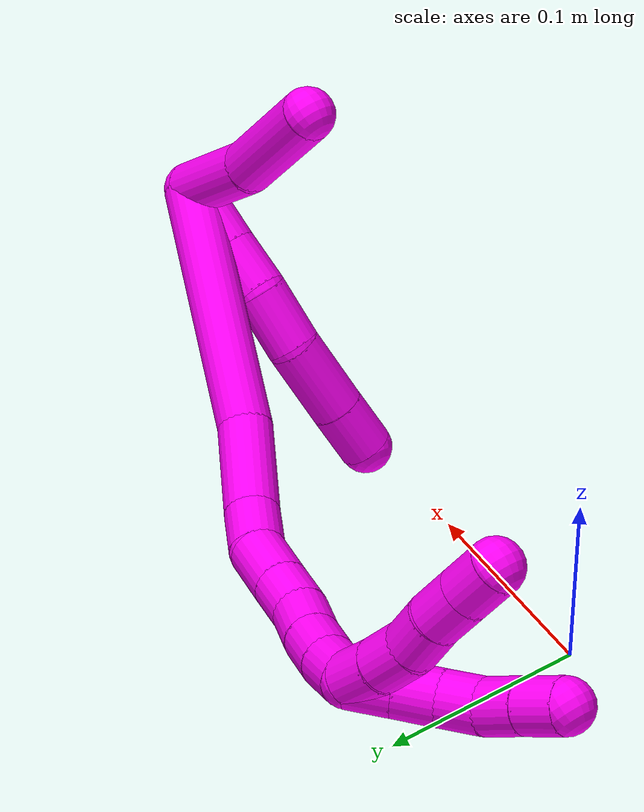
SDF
<sdf version="1.7">
 <world name="default">
  <model name="10">
   <static>0</static>
   <link name="10">
    <collision name="collision-cylinder-e_1_2_8">
     <pose>0.000434 -0.000926 -0.016501 3.08554 0.026283 0.876753</pose>
     <geometry><cylinder><radius>0.0125</radius><length>0.033065</length></cylinder></geometry>
     <surface>
      <friction><ode><mu>1.16</mu><mu2>1.16</mu2><slip1>0</slip1><slip2>0</slip2></ode></friction>
      <contact><ode><kp>1e+06</kp><kd>1</kd><max_vel>0</max_vel><min_depth>0.001</min_depth></ode></contact>
     </surface>
    </collision>
    <visual name="visual-cylinder-e_1_2_8">
     <pose>0.000434 -0.000926 -0.016501 3.08554 0.026283 0.876753</pose>
     <geometry><cylinder><radius>0.0125</radius><length>0.033065</length></cylinder></geometry>
     <material><ambient>1 0 0.964706 1</ambient></material>
    </visual>
    <collision name="collision-cylinder-e_2_8_9">
     <pose>0.001025 -0.002891 -0.045278 3.05716 0.012671 0.297748</pose>
     <geometry><cylinder><radius>0.0125</radius><length>0.024642</length></cylinder></geometry>
     <surface>
      <friction><ode><mu>1.16</mu><mu2>1.16</mu2><slip1>0</slip1><slip2>0</slip2></ode></friction>
      <contact><ode><kp>1e+06</kp><kd>1</kd><max_vel>0</max_vel><min_depth>0.001</min_depth></ode></contact>
     </surface>
    </collision>
    <visual name="visual-cylinder-e_2_8_9">
     <pose>0.001025 -0.002891 -0.045278 3.05716 0.012671 0.297748</pose>
     <geometry><cylinder><radius>0.0125</radius><length>0.024642</length></cylinder></geometry>
     <material><ambient>1 0 0.964706 1</ambient></material>
    </visual>
    <collision name="collision-cylinder-e_3_9_10">
     <pose>0.005145 -0.00748 -0.071388 2.89042 0.270737 1.64659</pose>
     <geometry><cylinder><radius>0.0125</radius><length>0.029644</length></cylinder></geometry>
     <surface>
      <friction><ode><mu>1.16</mu><mu2>1.16</mu2><slip1>0</slip1><slip2>0</slip2></ode></friction>
      <contact><ode><kp>1e+06</kp><kd>1</kd><max_vel>0</max_vel><min_depth>0.001</min_depth></ode></contact>
     </surface>
    </collision>
    <visual name="visual-cylinder-e_3_9_10">
     <pose>0.005145 -0.00748 -0.071388 2.89042 0.270737 1.64659</pose>
     <geometry><cylinder><radius>0.0125</radius><length>0.029644</length></cylinder></geometry>
     <material><ambient>1 0 0.964706 1</ambient></material>
    </visual>
    <collision name="collision-cylinder-e_4_10_11">
     <pose>0.016419 -0.019065 -0.100458 2.65626 0.401351 1.3757</pose>
     <geometry><cylinder><radius>0.0125</radius><length>0.037423</length></cylinder></geometry>
     <surface>
      <friction><ode><mu>1.16</mu><mu2>1.16</mu2><slip1>0</slip1><slip2>0</slip2></ode></friction>
      <contact><ode><kp>1e+06</kp><kd>1</kd><max_vel>0</max_vel><min_depth>0.001</min_depth></ode></contact>
     </surface>
    </collision>
    <visual name="visual-cylinder-e_4_10_11">
     <pose>0.016419 -0.019065 -0.100458 2.65626 0.401351 1.3757</pose>
     <geometry><cylinder><radius>0.0125</radius><length>0.037423</length></cylinder></geometry>
     <material><ambient>1 0 0.964706 1</ambient></material>
    </visual>
    <collision name="collision-cylinder-e_5_11_6">
     <pose>0.028738 -0.032819 -0.125757 2.62483 0.408411 1.3293</pose>
     <geometry><cylinder><radius>0.0125</radius><length>0.025225</length></cylinder></geometry>
     <surface>
      <friction><ode><mu>1.16</mu><mu2>1.16</mu2><slip1>0</slip1><slip2>0</slip2></ode></friction>
      <contact><ode><kp>1e+06</kp><kd>1</kd><max_vel>0</max_vel><min_depth>0.001</min_depth></ode></contact>
     </surface>
    </collision>
    <visual name="visual-cylinder-e_5_11_6">
     <pose>0.028738 -0.032819 -0.125757 2.62483 0.408411 1.3293</pose>
     <geometry><cylinder><radius>0.0125</radius><length>0.025225</length></cylinder></geometry>
     <material><ambient>1 0 0.964706 1</ambient></material>
    </visual>
    <collision name="collision-cylinder-e_1_2_12">
     <pose>-0.021162 0.000658 -0.007239 -3.05099 -1.23994 3.01476</pose>
     <geometry><cylinder><radius>0.0125</radius><length>0.044752</length></cylinder></geometry>
     <surface>
      <friction><ode><mu>1.16</mu><mu2>1.16</mu2><slip1>0</slip1><slip2>0</slip2></ode></friction>
      <contact><ode><kp>1e+06</kp><kd>1</kd><max_vel>0</max_vel><min_depth>0.001</min_depth></ode></contact>
     </surface>
    </collision>
    <visual name="visual-cylinder-e_1_2_12">
     <pose>-0.021162 0.000658 -0.007239 -3.05099 -1.23994 3.01476</pose>
     <geometry><cylinder><radius>0.0125</radius><length>0.044752</length></cylinder></geometry>
     <material><ambient>1 0 0.964706 1</ambient></material>
    </visual>
    <collision name="collision-cylinder-e_2_12_5">
     <pose>-0.069708 0.003203 -0.017592 -2.59668 -1.43861 2.52398</pose>
     <geometry><cylinder><radius>0.0125</radius><length>0.055248</length></cylinder></geometry>
     <surface>
      <friction><ode><mu>1.16</mu><mu2>1.16</mu2><slip1>0</slip1><slip2>0</slip2></ode></friction>
      <contact><ode><kp>1e+06</kp><kd>1</kd><max_vel>0</max_vel><min_depth>0.001</min_depth></ode></contact>
     </surface>
    </collision>
    <visual name="visual-cylinder-e_2_12_5">
     <pose>-0.069708 0.003203 -0.017592 -2.59668 -1.43861 2.52398</pose>
     <geometry><cylinder><radius>0.0125</radius><length>0.055248</length></cylinder></geometry>
     <material><ambient>1 0 0.964706 1</ambient></material>
    </visual>
    <collision name="collision-cylinder-e_1_2_13">
     <pose>0.001627 0.022237 -0.057525 -2.77272 0.026375 -0.141151</pose>
     <geometry><cylinder><radius>0.0125</radius><length>0.12339</length></cylinder></geometry>
     <surface>
      <friction><ode><mu>1.16</mu><mu2>1.16</mu2><slip1>0</slip1><slip2>0</slip2></ode></friction>
      <contact><ode><kp>1e+06</kp><kd>1</kd><max_vel>0</max_vel><min_depth>0.001</min_depth></ode></contact>
     </surface>
    </collision>
    <visual name="visual-cylinder-e_1_2_13">
     <pose>0.001627 0.022237 -0.057525 -2.77272 0.026375 -0.141151</pose>
     <geometry><cylinder><radius>0.0125</radius><length>0.12339</length></cylinder></geometry>
     <material><ambient>1 0 0.964706 1</ambient></material>
    </visual>
    <collision name="collision-cylinder-e_2_13_14">
     <pose>0.002056 0.056743 -0.134362 -2.57563 -0.052333 0.17953</pose>
     <geometry><cylinder><radius>0.0125</radius><length>0.045821</length></cylinder></geometry>
     <surface>
      <friction><ode><mu>1.16</mu><mu2>1.16</mu2><slip1>0</slip1><slip2>0</slip2></ode></friction>
      <contact><ode><kp>1e+06</kp><kd>1</kd><max_vel>0</max_vel><min_depth>0.001</min_depth></ode></contact>
     </surface>
    </collision>
    <visual name="visual-cylinder-e_2_13_14">
     <pose>0.002056 0.056743 -0.134362 -2.57563 -0.052333 0.17953</pose>
     <geometry><cylinder><radius>0.0125</radius><length>0.045821</length></cylinder></geometry>
     <material><ambient>1 0 0.964706 1</ambient></material>
    </visual>
    <collision name="collision-cylinder-e_3_14_15">
     <pose>-0.001951 0.075642 -0.162668 -2.50636 -0.246257 0.720068</pose>
     <geometry><cylinder><radius>0.0125</radius><length>0.023043</length></cylinder></geometry>
     <surface>
      <friction><ode><mu>1.16</mu><mu2>1.16</mu2><slip1>0</slip1><slip2>0</slip2></ode></friction>
      <contact><ode><kp>1e+06</kp><kd>1</kd><max_vel>0</max_vel><min_depth>0.001</min_depth></ode></contact>
     </surface>
    </collision>
    <visual name="visual-cylinder-e_3_14_15">
     <pose>-0.001951 0.075642 -0.162668 -2.50636 -0.246257 0.720068</pose>
     <geometry><cylinder><radius>0.0125</radius><length>0.023043</length></cylinder></geometry>
     <material><ambient>1 0 0.964706 1</ambient></material>
    </visual>
    <collision name="collision-cylinder-e_4_15_16">
     <pose>-0.010601 0.086371 -0.182109 -2.76769 -0.479889 1.82526</pose>
     <geometry><cylinder><radius>0.0125</radius><length>0.025302</length></cylinder></geometry>
     <surface>
      <friction><ode><mu>1.16</mu><mu2>1.16</mu2><slip1>0</slip1><slip2>0</slip2></ode></friction>
      <contact><ode><kp>1e+06</kp><kd>1</kd><max_vel>0</max_vel><min_depth>0.001</min_depth></ode></contact>
     </surface>
    </collision>
    <visual name="visual-cylinder-e_4_15_16">
     <pose>-0.010601 0.086371 -0.182109 -2.76769 -0.479889 1.82526</pose>
     <geometry><cylinder><radius>0.0125</radius><length>0.025302</length></cylinder></geometry>
     <material><ambient>1 0 0.964706 1</ambient></material>
    </visual>
    <collision name="collision-cylinder-e_5_16_17">
     <pose>-0.021295 0.09378 -0.200698 -2.75555 -0.504493 1.84393</pose>
     <geometry><cylinder><radius>0.0125</radius><length>0.020081</length></cylinder></geometry>
     <surface>
      <friction><ode><mu>1.16</mu><mu2>1.16</mu2><slip1>0</slip1><slip2>0</slip2></ode></friction>
      <contact><ode><kp>1e+06</kp><kd>1</kd><max_vel>0</max_vel><min_depth>0.001</min_depth></ode></contact>
     </surface>
    </collision>
    <visual name="visual-cylinder-e_5_16_17">
     <pose>-0.021295 0.09378 -0.200698 -2.75555 -0.504493 1.84393</pose>
     <geometry><cylinder><radius>0.0125</radius><length>0.020081</length></cylinder></geometry>
     <material><ambient>1 0 0.964706 1</ambient></material>
    </visual>
    <collision name="collision-cylinder-e_6_17_18">
     <pose>-0.031329 0.102408 -0.21628 -2.52085 -0.515478 1.37586</pose>
     <geometry><cylinder><radius>0.0125</radius><length>0.021021</length></cylinder></geometry>
     <surface>
      <friction><ode><mu>1.16</mu><mu2>1.16</mu2><slip1>0</slip1><slip2>0</slip2></ode></friction>
      <contact><ode><kp>1e+06</kp><kd>1</kd><max_vel>0</max_vel><min_depth>0.001</min_depth></ode></contact>
     </surface>
    </collision>
    <visual name="visual-cylinder-e_6_17_18">
     <pose>-0.031329 0.102408 -0.21628 -2.52085 -0.515478 1.37586</pose>
     <geometry><cylinder><radius>0.0125</radius><length>0.021021</length></cylinder></geometry>
     <material><ambient>1 0 0.964706 1</ambient></material>
    </visual>
    <collision name="collision-cylinder-e_7_18_19">
     <pose>-0.042745 0.112357 -0.231016 -2.57628 -0.624912 1.67699</pose>
     <geometry><cylinder><radius>0.0125</radius><length>0.021313</length></cylinder></geometry>
     <surface>
      <friction><ode><mu>1.16</mu><mu2>1.16</mu2><slip1>0</slip1><slip2>0</slip2></ode></friction>
      <contact><ode><kp>1e+06</kp><kd>1</kd><max_vel>0</max_vel><min_depth>0.001</min_depth></ode></contact>
     </surface>
    </collision>
    <visual name="visual-cylinder-e_7_18_19">
     <pose>-0.042745 0.112357 -0.231016 -2.57628 -0.624912 1.67699</pose>
     <geometry><cylinder><radius>0.0125</radius><length>0.021313</length></cylinder></geometry>
     <material><ambient>1 0 0.964706 1</ambient></material>
    </visual>
    <collision name="collision-cylinder-e_8_19_1">
     <pose>-0.05576 0.120716 -0.24467 -2.61089 -0.743806 1.92454</pose>
     <geometry><cylinder><radius>0.0125</radius><length>0.020029</length></cylinder></geometry>
     <surface>
      <friction><ode><mu>1.16</mu><mu2>1.16</mu2><slip1>0</slip1><slip2>0</slip2></ode></friction>
      <contact><ode><kp>1e+06</kp><kd>1</kd><max_vel>0</max_vel><min_depth>0.001</min_depth></ode></contact>
     </surface>
    </collision>
    <visual name="visual-cylinder-e_8_19_1">
     <pose>-0.05576 0.120716 -0.24467 -2.61089 -0.743806 1.92454</pose>
     <geometry><cylinder><radius>0.0125</radius><length>0.020029</length></cylinder></geometry>
     <material><ambient>1 0 0.964706 1</ambient></material>
    </visual>
    <collision name="collision-cylinder-e_1_1_20">
     <pose>-0.067678 0.119206 -0.257819 2.48455 -0.53957 -1.3631</pose>
     <geometry><cylinder><radius>0.0125</radius><length>0.02</length></cylinder></geometry>
     <surface>
      <friction><ode><mu>1.16</mu><mu2>1.16</mu2><slip1>0</slip1><slip2>0</slip2></ode></friction>
      <contact><ode><kp>1e+06</kp><kd>1</kd><max_vel>0</max_vel><min_depth>0.001</min_depth></ode></contact>
     </surface>
    </collision>
    <visual name="visual-cylinder-e_1_1_20">
     <pose>-0.067678 0.119206 -0.257819 2.48455 -0.53957 -1.3631</pose>
     <geometry><cylinder><radius>0.0125</radius><length>0.02</length></cylinder></geometry>
     <material><ambient>1 0 0.964706 1</ambient></material>
    </visual>
    <collision name="collision-cylinder-e_2_20_21">
     <pose>-0.07787 0.108713 -0.271458 2.48702 -0.529826 -1.34838</pose>
     <geometry><cylinder><radius>0.0125</radius><length>0.02</length></cylinder></geometry>
     <surface>
      <friction><ode><mu>1.16</mu><mu2>1.16</mu2><slip1>0</slip1><slip2>0</slip2></ode></friction>
      <contact><ode><kp>1e+06</kp><kd>1</kd><max_vel>0</max_vel><min_depth>0.001</min_depth></ode></contact>
     </surface>
    </collision>
    <visual name="visual-cylinder-e_2_20_21">
     <pose>-0.07787 0.108713 -0.271458 2.48702 -0.529826 -1.34838</pose>
     <geometry><cylinder><radius>0.0125</radius><length>0.02</length></cylinder></geometry>
     <material><ambient>1 0 0.964706 1</ambient></material>
    </visual>
    <collision name="collision-cylinder-e_3_21_22">
     <pose>-0.089879 0.100613 -0.2849 2.73426 -0.769178 -2.19793</pose>
     <geometry><cylinder><radius>0.0125</radius><length>0.02</length></cylinder></geometry>
     <surface>
      <friction><ode><mu>1.16</mu><mu2>1.16</mu2><slip1>0</slip1><slip2>0</slip2></ode></friction>
      <contact><ode><kp>1e+06</kp><kd>1</kd><max_vel>0</max_vel><min_depth>0.001</min_depth></ode></contact>
     </surface>
    </collision>
    <visual name="visual-cylinder-e_3_21_22">
     <pose>-0.089879 0.100613 -0.2849 2.73426 -0.769178 -2.19793</pose>
     <geometry><cylinder><radius>0.0125</radius><length>0.02</length></cylinder></geometry>
     <material><ambient>1 0 0.964706 1</ambient></material>
    </visual>
    <collision name="collision-cylinder-e_4_22_23">
     <pose>-0.105554 0.096348 -0.296183 2.84752 -1.05915 -2.64596</pose>
     <geometry><cylinder><radius>0.0125</radius><length>0.02</length></cylinder></geometry>
     <surface>
      <friction><ode><mu>1.16</mu><mu2>1.16</mu2><slip1>0</slip1><slip2>0</slip2></ode></friction>
      <contact><ode><kp>1e+06</kp><kd>1</kd><max_vel>0</max_vel><min_depth>0.001</min_depth></ode></contact>
     </surface>
    </collision>
    <visual name="visual-cylinder-e_4_22_23">
     <pose>-0.105554 0.096348 -0.296183 2.84752 -1.05915 -2.64596</pose>
     <geometry><cylinder><radius>0.0125</radius><length>0.02</length></cylinder></geometry>
     <material><ambient>1 0 0.964706 1</ambient></material>
    </visual>
    <collision name="collision-cylinder-e_5_23_4">
     <pose>-0.122805 0.093233 -0.305801 2.81039 -1.02212 -2.56225</pose>
     <geometry><cylinder><radius>0.0125</radius><length>0.02</length></cylinder></geometry>
     <surface>
      <friction><ode><mu>1.16</mu><mu2>1.16</mu2><slip1>0</slip1><slip2>0</slip2></ode></friction>
      <contact><ode><kp>1e+06</kp><kd>1</kd><max_vel>0</max_vel><min_depth>0.001</min_depth></ode></contact>
     </surface>
    </collision>
    <visual name="visual-cylinder-e_5_23_4">
     <pose>-0.122805 0.093233 -0.305801 2.81039 -1.02212 -2.56225</pose>
     <geometry><cylinder><radius>0.0125</radius><length>0.02</length></cylinder></geometry>
     <material><ambient>1 0 0.964706 1</ambient></material>
    </visual>
    <collision name="collision-cylinder-e_1_1_24">
     <pose>-0.072322 0.123473 -0.252864 2.65438 -1.3613 -2.54596</pose>
     <geometry><cylinder><radius>0.0125</radius><length>0.02</length></cylinder></geometry>
     <surface>
      <friction><ode><mu>1.16</mu><mu2>1.16</mu2><slip1>0</slip1><slip2>0</slip2></ode></friction>
      <contact><ode><kp>1e+06</kp><kd>1</kd><max_vel>0</max_vel><min_depth>0.001</min_depth></ode></contact>
     </surface>
    </collision>
    <visual name="visual-cylinder-e_1_1_24">
     <pose>-0.072322 0.123473 -0.252864 2.65438 -1.3613 -2.54596</pose>
     <geometry><cylinder><radius>0.0125</radius><length>0.02</length></cylinder></geometry>
     <material><ambient>1 0 0.964706 1</ambient></material>
    </visual>
    <collision name="collision-cylinder-e_2_24_25">
     <pose>-0.091943 0.121026 -0.255701 2.16684 -1.39185 -2.0108</pose>
     <geometry><cylinder><radius>0.0125</radius><length>0.02</length></cylinder></geometry>
     <surface>
      <friction><ode><mu>1.16</mu><mu2>1.16</mu2><slip1>0</slip1><slip2>0</slip2></ode></friction>
      <contact><ode><kp>1e+06</kp><kd>1</kd><max_vel>0</max_vel><min_depth>0.001</min_depth></ode></contact>
     </surface>
    </collision>
    <visual name="visual-cylinder-e_2_24_25">
     <pose>-0.091943 0.121026 -0.255701 2.16684 -1.39185 -2.0108</pose>
     <geometry><cylinder><radius>0.0125</radius><length>0.02</length></cylinder></geometry>
     <material><ambient>1 0 0.964706 1</ambient></material>
    </visual>
    <collision name="collision-cylinder-e_3_25_26">
     <pose>-0.111696 0.118924 -0.255537 0.496211 -1.43823 -0.436507</pose>
     <geometry><cylinder><radius>0.0125</radius><length>0.02</length></cylinder></geometry>
     <surface>
      <friction><ode><mu>1.16</mu><mu2>1.16</mu2><slip1>0</slip1><slip2>0</slip2></ode></friction>
      <contact><ode><kp>1e+06</kp><kd>1</kd><max_vel>0</max_vel><min_depth>0.001</min_depth></ode></contact>
     </surface>
    </collision>
    <visual name="visual-cylinder-e_3_25_26">
     <pose>-0.111696 0.118924 -0.255537 0.496211 -1.43823 -0.436507</pose>
     <geometry><cylinder><radius>0.0125</radius><length>0.02</length></cylinder></geometry>
     <material><ambient>1 0 0.964706 1</ambient></material>
    </visual>
    <collision name="collision-cylinder-e_4_26_27">
     <pose>-0.131462 0.116625 -0.254026 1.36472 -1.39938 -1.1998</pose>
     <geometry><cylinder><radius>0.0125</radius><length>0.02</length></cylinder></geometry>
     <surface>
      <friction><ode><mu>1.16</mu><mu2>1.16</mu2><slip1>0</slip1><slip2>0</slip2></ode></friction>
      <contact><ode><kp>1e+06</kp><kd>1</kd><max_vel>0</max_vel><min_depth>0.001</min_depth></ode></contact>
     </surface>
    </collision>
    <visual name="visual-cylinder-e_4_26_27">
     <pose>-0.131462 0.116625 -0.254026 1.36472 -1.39938 -1.1998</pose>
     <geometry><cylinder><radius>0.0125</radius><length>0.02</length></cylinder></geometry>
     <material><ambient>1 0 0.964706 1</ambient></material>
    </visual>
    <collision name="collision-cylinder-e_5_27_3">
     <pose>-0.151171 0.113296 -0.253334 1.36703 -1.40054 -1.2031</pose>
     <geometry><cylinder><radius>0.0125</radius><length>0.02</length></cylinder></geometry>
     <surface>
      <friction><ode><mu>1.16</mu><mu2>1.16</mu2><slip1>0</slip1><slip2>0</slip2></ode></friction>
      <contact><ode><kp>1e+06</kp><kd>1</kd><max_vel>0</max_vel><min_depth>0.001</min_depth></ode></contact>
     </surface>
    </collision>
    <visual name="visual-cylinder-e_5_27_3">
     <pose>-0.151171 0.113296 -0.253334 1.36703 -1.40054 -1.2031</pose>
     <geometry><cylinder><radius>0.0125</radius><length>0.02</length></cylinder></geometry>
     <material><ambient>1 0 0.964706 1</ambient></material>
    </visual>
    <collision name="collision-sphere-3">
     <pose>-0.161026 0.111637 -0.252991 0 -0 0</pose>
     <geometry><sphere><radius>0.0125</radius></sphere></geometry>
     <surface>
      <friction><ode><mu>1.16</mu><mu2>1.16</mu2><slip1>0</slip1><slip2>0</slip2></ode></friction>
      <contact><ode><kp>1e+06</kp><kd>1</kd><max_vel>0</max_vel><min_depth>0.001</min_depth></ode></contact>
     </surface>
    </collision>
    <visual name="visual-sphere-3">
     <pose>-0.161026 0.111637 -0.252991 0 -0 0</pose>
     <geometry><sphere><radius>0.0125</radius></sphere></geometry>
     <material><ambient>1 0 0.964706 1</ambient></material>
    </visual>
    <collision name="collision-sphere-27">
     <pose>-0.141315 0.114955 -0.253677 0 -0 0</pose>
     <geometry><sphere><radius>0.0125</radius></sphere></geometry>
     <surface>
      <friction><ode><mu>1.16</mu><mu2>1.16</mu2><slip1>0</slip1><slip2>0</slip2></ode></friction>
      <contact><ode><kp>1e+06</kp><kd>1</kd><max_vel>0</max_vel><min_depth>0.001</min_depth></ode></contact>
     </surface>
    </collision>
    <visual name="visual-sphere-27">
     <pose>-0.141315 0.114955 -0.253677 0 -0 0</pose>
     <geometry><sphere><radius>0.0125</radius></sphere></geometry>
     <material><ambient>1 0 0.964706 1</ambient></material>
    </visual>
    <collision name="collision-sphere-26">
     <pose>-0.121608 0.118295 -0.254375 0 -0 0</pose>
     <geometry><sphere><radius>0.0125</radius></sphere></geometry>
     <surface>
      <friction><ode><mu>1.16</mu><mu2>1.16</mu2><slip1>0</slip1><slip2>0</slip2></ode></friction>
      <contact><ode><kp>1e+06</kp><kd>1</kd><max_vel>0</max_vel><min_depth>0.001</min_depth></ode></contact>
     </surface>
    </collision>
    <visual name="visual-sphere-26">
     <pose>-0.121608 0.118295 -0.254375 0 -0 0</pose>
     <geometry><sphere><radius>0.0125</radius></sphere></geometry>
     <material><ambient>1 0 0.964706 1</ambient></material>
    </visual>
    <collision name="collision-sphere-25">
     <pose>-0.101784 0.119553 -0.2567 0 -0 0</pose>
     <geometry><sphere><radius>0.0125</radius></sphere></geometry>
     <surface>
      <friction><ode><mu>1.16</mu><mu2>1.16</mu2><slip1>0</slip1><slip2>0</slip2></ode></friction>
      <contact><ode><kp>1e+06</kp><kd>1</kd><max_vel>0</max_vel><min_depth>0.001</min_depth></ode></contact>
     </surface>
    </collision>
    <visual name="visual-sphere-25">
     <pose>-0.101784 0.119553 -0.2567 0 -0 0</pose>
     <geometry><sphere><radius>0.0125</radius></sphere></geometry>
     <material><ambient>1 0 0.964706 1</ambient></material>
    </visual>
    <collision name="collision-sphere-24">
     <pose>-0.082103 0.122499 -0.254701 0 -0 0</pose>
     <geometry><sphere><radius>0.0125</radius></sphere></geometry>
     <surface>
      <friction><ode><mu>1.16</mu><mu2>1.16</mu2><slip1>0</slip1><slip2>0</slip2></ode></friction>
      <contact><ode><kp>1e+06</kp><kd>1</kd><max_vel>0</max_vel><min_depth>0.001</min_depth></ode></contact>
     </surface>
    </collision>
    <visual name="visual-sphere-24">
     <pose>-0.082103 0.122499 -0.254701 0 -0 0</pose>
     <geometry><sphere><radius>0.0125</radius></sphere></geometry>
     <material><ambient>1 0 0.964706 1</ambient></material>
    </visual>
    <collision name="collision-sphere-4">
     <pose>-0.131337 0.091536 -0.310733 0 -0 0</pose>
     <geometry><sphere><radius>0.0125</radius></sphere></geometry>
     <surface>
      <friction><ode><mu>1.16</mu><mu2>1.16</mu2><slip1>0</slip1><slip2>0</slip2></ode></friction>
      <contact><ode><kp>1e+06</kp><kd>1</kd><max_vel>0</max_vel><min_depth>0.001</min_depth></ode></contact>
     </surface>
    </collision>
    <visual name="visual-sphere-4">
     <pose>-0.131337 0.091536 -0.310733 0 -0 0</pose>
     <geometry><sphere><radius>0.0125</radius></sphere></geometry>
     <material><ambient>1 0 0.964706 1</ambient></material>
    </visual>
    <collision name="collision-sphere-23">
     <pose>-0.114273 0.094929 -0.300869 0 -0 0</pose>
     <geometry><sphere><radius>0.0125</radius></sphere></geometry>
     <surface>
      <friction><ode><mu>1.16</mu><mu2>1.16</mu2><slip1>0</slip1><slip2>0</slip2></ode></friction>
      <contact><ode><kp>1e+06</kp><kd>1</kd><max_vel>0</max_vel><min_depth>0.001</min_depth></ode></contact>
     </surface>
    </collision>
    <visual name="visual-sphere-23">
     <pose>-0.114273 0.094929 -0.300869 0 -0 0</pose>
     <geometry><sphere><radius>0.0125</radius></sphere></geometry>
     <material><ambient>1 0 0.964706 1</ambient></material>
    </visual>
    <collision name="collision-sphere-22">
     <pose>-0.096834 0.097767 -0.291497 0 -0 0</pose>
     <geometry><sphere><radius>0.0125</radius></sphere></geometry>
     <surface>
      <friction><ode><mu>1.16</mu><mu2>1.16</mu2><slip1>0</slip1><slip2>0</slip2></ode></friction>
      <contact><ode><kp>1e+06</kp><kd>1</kd><max_vel>0</max_vel><min_depth>0.001</min_depth></ode></contact>
     </surface>
    </collision>
    <visual name="visual-sphere-22">
     <pose>-0.096834 0.097767 -0.291497 0 -0 0</pose>
     <geometry><sphere><radius>0.0125</radius></sphere></geometry>
     <material><ambient>1 0 0.964706 1</ambient></material>
    </visual>
    <collision name="collision-sphere-21">
     <pose>-0.082923 0.10346 -0.278303 0 -0 0</pose>
     <geometry><sphere><radius>0.0125</radius></sphere></geometry>
     <surface>
      <friction><ode><mu>1.16</mu><mu2>1.16</mu2><slip1>0</slip1><slip2>0</slip2></ode></friction>
      <contact><ode><kp>1e+06</kp><kd>1</kd><max_vel>0</max_vel><min_depth>0.001</min_depth></ode></contact>
     </surface>
    </collision>
    <visual name="visual-sphere-21">
     <pose>-0.082923 0.10346 -0.278303 0 -0 0</pose>
     <geometry><sphere><radius>0.0125</radius></sphere></geometry>
     <material><ambient>1 0 0.964706 1</ambient></material>
    </visual>
    <collision name="collision-sphere-20">
     <pose>-0.072816 0.113966 -0.264612 0 -0 0</pose>
     <geometry><sphere><radius>0.0125</radius></sphere></geometry>
     <surface>
      <friction><ode><mu>1.16</mu><mu2>1.16</mu2><slip1>0</slip1><slip2>0</slip2></ode></friction>
      <contact><ode><kp>1e+06</kp><kd>1</kd><max_vel>0</max_vel><min_depth>0.001</min_depth></ode></contact>
     </surface>
    </collision>
    <visual name="visual-sphere-20">
     <pose>-0.072816 0.113966 -0.264612 0 -0 0</pose>
     <geometry><sphere><radius>0.0125</radius></sphere></geometry>
     <material><ambient>1 0 0.964706 1</ambient></material>
    </visual>
    <collision name="collision-sphere-6">
     <pose>0.033747 -0.038538 -0.135821 0 -0 0</pose>
     <geometry><sphere><radius>0.0125</radius></sphere></geometry>
     <surface>
      <friction><ode><mu>1.16</mu><mu2>1.16</mu2><slip1>0</slip1><slip2>0</slip2></ode></friction>
      <contact><ode><kp>1e+06</kp><kd>1</kd><max_vel>0</max_vel><min_depth>0.001</min_depth></ode></contact>
     </surface>
    </collision>
    <visual name="visual-sphere-6">
     <pose>0.033747 -0.038538 -0.135821 0 -0 0</pose>
     <geometry><sphere><radius>0.0125</radius></sphere></geometry>
     <material><ambient>1 0 0.964706 1</ambient></material>
    </visual>
    <collision name="collision-sphere-11">
     <pose>0.023729 -0.0271 -0.115693 0 -0 0</pose>
     <geometry><sphere><radius>0.0125</radius></sphere></geometry>
     <surface>
      <friction><ode><mu>1.16</mu><mu2>1.16</mu2><slip1>0</slip1><slip2>0</slip2></ode></friction>
      <contact><ode><kp>1e+06</kp><kd>1</kd><max_vel>0</max_vel><min_depth>0.001</min_depth></ode></contact>
     </surface>
    </collision>
    <visual name="visual-sphere-11">
     <pose>0.023729 -0.0271 -0.115693 0 -0 0</pose>
     <geometry><sphere><radius>0.0125</radius></sphere></geometry>
     <material><ambient>1 0 0.964706 1</ambient></material>
    </visual>
    <collision name="collision-sphere-10">
     <pose>0.009109 -0.011029 -0.085223 0 -0 0</pose>
     <geometry><sphere><radius>0.0125</radius></sphere></geometry>
     <surface>
      <friction><ode><mu>1.16</mu><mu2>1.16</mu2><slip1>0</slip1><slip2>0</slip2></ode></friction>
      <contact><ode><kp>1e+06</kp><kd>1</kd><max_vel>0</max_vel><min_depth>0.001</min_depth></ode></contact>
     </surface>
    </collision>
    <visual name="visual-sphere-10">
     <pose>0.009109 -0.011029 -0.085223 0 -0 0</pose>
     <geometry><sphere><radius>0.0125</radius></sphere></geometry>
     <material><ambient>1 0 0.964706 1</ambient></material>
    </visual>
    <collision name="collision-sphere-9">
     <pose>0.001181 -0.00393 -0.057554 0 -0 0</pose>
     <geometry><sphere><radius>0.0125</radius></sphere></geometry>
     <surface>
      <friction><ode><mu>1.16</mu><mu2>1.16</mu2><slip1>0</slip1><slip2>0</slip2></ode></friction>
      <contact><ode><kp>1e+06</kp><kd>1</kd><max_vel>0</max_vel><min_depth>0.001</min_depth></ode></contact>
     </surface>
    </collision>
    <visual name="visual-sphere-9">
     <pose>0.001181 -0.00393 -0.057554 0 -0 0</pose>
     <geometry><sphere><radius>0.0125</radius></sphere></geometry>
     <material><ambient>1 0 0.964706 1</ambient></material>
    </visual>
    <collision name="collision-sphere-2">
     <geometry><sphere><radius>0.0125</radius></sphere></geometry>
     <surface>
      <friction><ode><mu>1.16</mu><mu2>1.16</mu2><slip1>0</slip1><slip2>0</slip2></ode></friction>
      <contact><ode><kp>1e+06</kp><kd>1</kd><max_vel>0</max_vel><min_depth>0.001</min_depth></ode></contact>
     </surface>
    </collision>
    <visual name="visual-sphere-2">
     <geometry><sphere><radius>0.0125</radius></sphere></geometry>
     <material><ambient>1 0 0.964706 1</ambient></material>
    </visual>
    <collision name="collision-sphere-19">
     <pose>-0.048979 0.116986 -0.238314 0 -0 0</pose>
     <geometry><sphere><radius>0.0125</radius></sphere></geometry>
     <surface>
      <friction><ode><mu>1.16</mu><mu2>1.16</mu2><slip1>0</slip1><slip2>0</slip2></ode></friction>
      <contact><ode><kp>1e+06</kp><kd>1</kd><max_vel>0</max_vel><min_depth>0.001</min_depth></ode></contact>
     </surface>
    </collision>
    <visual name="visual-sphere-19">
     <pose>-0.048979 0.116986 -0.238314 0 -0 0</pose>
     <geometry><sphere><radius>0.0125</radius></sphere></geometry>
     <material><ambient>1 0 0.964706 1</ambient></material>
    </visual>
    <collision name="collision-sphere-8">
     <pose>0.000869 -0.001852 -0.033002 0 -0 0</pose>
     <geometry><sphere><radius>0.0125</radius></sphere></geometry>
     <surface>
      <friction><ode><mu>1.16</mu><mu2>1.16</mu2><slip1>0</slip1><slip2>0</slip2></ode></friction>
      <contact><ode><kp>1e+06</kp><kd>1</kd><max_vel>0</max_vel><min_depth>0.001</min_depth></ode></contact>
     </surface>
    </collision>
    <visual name="visual-sphere-8">
     <pose>0.000869 -0.001852 -0.033002 0 -0 0</pose>
     <geometry><sphere><radius>0.0125</radius></sphere></geometry>
     <material><ambient>1 0 0.964706 1</ambient></material>
    </visual>
    <collision name="collision-sphere-12">
     <pose>-0.042324 0.001315 -0.014478 0 -0 0</pose>
     <geometry><sphere><radius>0.0125</radius></sphere></geometry>
     <surface>
      <friction><ode><mu>1.16</mu><mu2>1.16</mu2><slip1>0</slip1><slip2>0</slip2></ode></friction>
      <contact><ode><kp>1e+06</kp><kd>1</kd><max_vel>0</max_vel><min_depth>0.001</min_depth></ode></contact>
     </surface>
    </collision>
    <visual name="visual-sphere-12">
     <pose>-0.042324 0.001315 -0.014478 0 -0 0</pose>
     <geometry><sphere><radius>0.0125</radius></sphere></geometry>
     <material><ambient>1 0 0.964706 1</ambient></material>
    </visual>
    <collision name="collision-sphere-5">
     <pose>-0.097091 0.00509 -0.020705 0 -0 0</pose>
     <geometry><sphere><radius>0.0125</radius></sphere></geometry>
     <surface>
      <friction><ode><mu>1.16</mu><mu2>1.16</mu2><slip1>0</slip1><slip2>0</slip2></ode></friction>
      <contact><ode><kp>1e+06</kp><kd>1</kd><max_vel>0</max_vel><min_depth>0.001</min_depth></ode></contact>
     </surface>
    </collision>
    <visual name="visual-sphere-5">
     <pose>-0.097091 0.00509 -0.020705 0 -0 0</pose>
     <geometry><sphere><radius>0.0125</radius></sphere></geometry>
     <material><ambient>1 0 0.964706 1</ambient></material>
    </visual>
    <collision name="collision-sphere-13">
     <pose>0.003254 0.044475 -0.11505 0 -0 0</pose>
     <geometry><sphere><radius>0.0125</radius></sphere></geometry>
     <surface>
      <friction><ode><mu>1.16</mu><mu2>1.16</mu2><slip1>0</slip1><slip2>0</slip2></ode></friction>
      <contact><ode><kp>1e+06</kp><kd>1</kd><max_vel>0</max_vel><min_depth>0.001</min_depth></ode></contact>
     </surface>
    </collision>
    <visual name="visual-sphere-13">
     <pose>0.003254 0.044475 -0.11505 0 -0 0</pose>
     <geometry><sphere><radius>0.0125</radius></sphere></geometry>
     <material><ambient>1 0 0.964706 1</ambient></material>
    </visual>
    <collision name="collision-sphere-14">
     <pose>0.000857 0.069012 -0.153673 0 -0 0</pose>
     <geometry><sphere><radius>0.0125</radius></sphere></geometry>
     <surface>
      <friction><ode><mu>1.16</mu><mu2>1.16</mu2><slip1>0</slip1><slip2>0</slip2></ode></friction>
      <contact><ode><kp>1e+06</kp><kd>1</kd><max_vel>0</max_vel><min_depth>0.001</min_depth></ode></contact>
     </surface>
    </collision>
    <visual name="visual-sphere-14">
     <pose>0.000857 0.069012 -0.153673 0 -0 0</pose>
     <geometry><sphere><radius>0.0125</radius></sphere></geometry>
     <material><ambient>1 0 0.964706 1</ambient></material>
    </visual>
    <collision name="collision-sphere-15">
     <pose>-0.00476 0.082272 -0.171662 0 -0 0</pose>
     <geometry><sphere><radius>0.0125</radius></sphere></geometry>
     <surface>
      <friction><ode><mu>1.16</mu><mu2>1.16</mu2><slip1>0</slip1><slip2>0</slip2></ode></friction>
      <contact><ode><kp>1e+06</kp><kd>1</kd><max_vel>0</max_vel><min_depth>0.001</min_depth></ode></contact>
     </surface>
    </collision>
    <visual name="visual-sphere-15">
     <pose>-0.00476 0.082272 -0.171662 0 -0 0</pose>
     <geometry><sphere><radius>0.0125</radius></sphere></geometry>
     <material><ambient>1 0 0.964706 1</ambient></material>
    </visual>
    <collision name="collision-sphere-16">
     <pose>-0.016442 0.09047 -0.192555 0 -0 0</pose>
     <geometry><sphere><radius>0.0125</radius></sphere></geometry>
     <surface>
      <friction><ode><mu>1.16</mu><mu2>1.16</mu2><slip1>0</slip1><slip2>0</slip2></ode></friction>
      <contact><ode><kp>1e+06</kp><kd>1</kd><max_vel>0</max_vel><min_depth>0.001</min_depth></ode></contact>
     </surface>
    </collision>
    <visual name="visual-sphere-16">
     <pose>-0.016442 0.09047 -0.192555 0 -0 0</pose>
     <geometry><sphere><radius>0.0125</radius></sphere></geometry>
     <material><ambient>1 0 0.964706 1</ambient></material>
    </visual>
    <collision name="collision-sphere-17">
     <pose>-0.026148 0.097089 -0.208841 0 -0 0</pose>
     <geometry><sphere><radius>0.0125</radius></sphere></geometry>
     <surface>
      <friction><ode><mu>1.16</mu><mu2>1.16</mu2><slip1>0</slip1><slip2>0</slip2></ode></friction>
      <contact><ode><kp>1e+06</kp><kd>1</kd><max_vel>0</max_vel><min_depth>0.001</min_depth></ode></contact>
     </surface>
    </collision>
    <visual name="visual-sphere-17">
     <pose>-0.026148 0.097089 -0.208841 0 -0 0</pose>
     <geometry><sphere><radius>0.0125</radius></sphere></geometry>
     <material><ambient>1 0 0.964706 1</ambient></material>
    </visual>
    <collision name="collision-sphere-18">
     <pose>-0.03651 0.107727 -0.223718 0 -0 0</pose>
     <geometry><sphere><radius>0.0125</radius></sphere></geometry>
     <surface>
      <friction><ode><mu>1.16</mu><mu2>1.16</mu2><slip1>0</slip1><slip2>0</slip2></ode></friction>
      <contact><ode><kp>1e+06</kp><kd>1</kd><max_vel>0</max_vel><min_depth>0.001</min_depth></ode></contact>
     </surface>
    </collision>
    <visual name="visual-sphere-18">
     <pose>-0.03651 0.107727 -0.223718 0 -0 0</pose>
     <geometry><sphere><radius>0.0125</radius></sphere></geometry>
     <material><ambient>1 0 0.964706 1</ambient></material>
    </visual>
    <collision name="collision-sphere-1">
     <pose>-0.06254 0.124447 -0.251026 0 -0 0</pose>
     <geometry><sphere><radius>0.0125</radius></sphere></geometry>
     <surface>
      <friction><ode><mu>1.16</mu><mu2>1.16</mu2><slip1>0</slip1><slip2>0</slip2></ode></friction>
      <contact><ode><kp>1e+06</kp><kd>1</kd><max_vel>0</max_vel><min_depth>0.001</min_depth></ode></contact>
     </surface>
    </collision>
    <visual name="visual-sphere-1">
     <pose>-0.06254 0.124447 -0.251026 0 -0 0</pose>
     <geometry><sphere><radius>0.0125</radius></sphere></geometry>
     <material><ambient>1 0 0.964706 1</ambient></material>
    </visual>
    <inertial>
     <pose>-0.035795 0.051588 -0.141025 0 -0 0</pose>
     <mass>0.75</mass>
     <inertia>
      <ixx>0.000145</ixx>
      <ixy>0</ixy>
      <ixz>0</ixz>
      <iyy>-0.00012</iyy>
      <iyz>0</iyz>
      <izz>-6.4e-05</izz>
     </inertia>
    </inertial>
   </link>
   <pose>0.21359 0.070021 0.165684 0.546808 1.02759 0.646225</pose>
  </model>
 </world>
</sdf>
